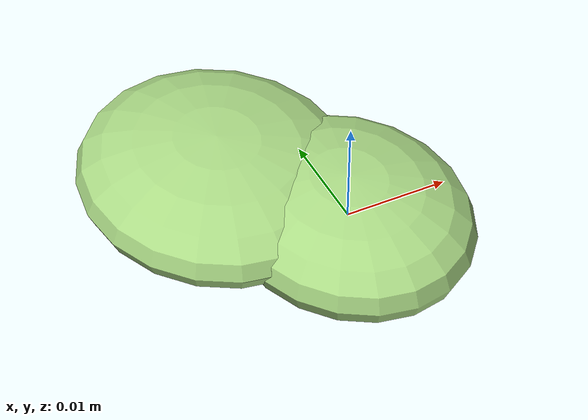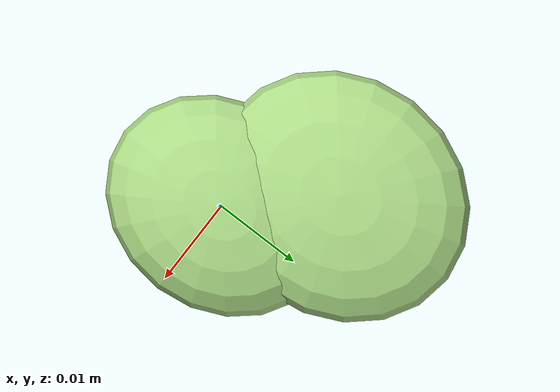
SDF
<?xml version="1.0" ?>
<!-- |    This document was autogenerated by xmacro from data/veggie_template/veggie_base.sdf.xacro  | -->
<!-- |    EDITING THIS FILE BY HAND IS NOT RECOMMENDED                                               | -->
<sdf version="1.8">
	<!-- Parameters -->
	<!-- Base -->
	<!-- Joint 0 -->
	<!-- Link 1 -->
	<!-- Joint 1 -->
	<!-- Link 2 -->
	<!-- Primitives -->
	<!-- All dimensions are half -->
	<!-- Object -->
	<model name="veggie">
		<!-- link0 -->
		<link name="link0">
			<inertial>
				<mass>0.0030442061964451577</mass>
				<inertia>
					<ixx>1.2225141475692126e-07</ixx>
					<ixy>0</ixy>
					<ixz>0</ixz>
					<iyy>9.239602856504485e-08</iyy>
					<iyz>0</iyz>
					<izz>1.865141810789737e-07</izz>
				</inertia>
			</inertial>
			<visual name="link0_visual">
				<pose>0 0 0 0 0 0</pose>
				<geometry>
					<ellipsoid>
						<radii>0.01134254111539413 0.013330027942288054 0.004806655743928107</radii>
					</ellipsoid>
				</geometry>
				<material>
					<ambient>0.659 0.839 0.514 1</ambient>
					<diffuse>0.659 0.839 0.514 1</diffuse>
					<specular>0 0 0 0</specular>
					<emissive>0 0 0 1</emissive>
				</material>
			</visual>
			<collision name="link0_collision">
				<pose>0 0 0 0 0 0 </pose>
				<geometry>
					<ellipsoid>
						<radii>0.01134254111539413 0.013330027942288054 0.004806655743928107</radii>
					</ellipsoid>
				</geometry>
			</collision>
		</link>
		<!-- link1 -->
		<joint name="joint0" type="fixed">
			<pose relative_to="link0">-0.008685763856665024 0.009593941709208909 0.0006922010619349184 0.0 0.0 0.0</pose>
			<parent>link0</parent>
			<child>link1</child>
		</joint>
		<link name="link1">
			<pose relative_to="joint0">0 0 0 0 0 0</pose>
			<inertial>
				<mass>0.0036766014935964097</mass>
				<inertia>
					<ixx>1.7513187132745893e-07</ixx>
					<ixy>0</ixy>
					<ixz>0</ixz>
					<iyy>1.4044534332184135e-07</iyy>
					<iyz>0</iyz>
					<izz>2.8494349099894546e-07</izz>
				</inertia>
			</inertial>
			<visual name="link1_visual">
				<pose>0 0 0 0 0 0</pose>
				<geometry>
					<ellipsoid>
						<radii>0.01304487162702846 0.014742478564845656 0.004564010341476354</radii>
					</ellipsoid>
				</geometry>
				<material>
					<ambient>0.659 0.839 0.514 1</ambient>
					<diffuse>0.659 0.839 0.514 1</diffuse>
					<specular>0 0 0 0</specular>
					<emissive>0 0 0 1</emissive>
				</material>
			</visual>
			<collision name="link1_collision">
				<pose>0 0 0 0 0 0 </pose>
				<geometry>
					<ellipsoid>
						<radii>0.01304487162702846 0.014742478564845656 0.004564010341476354</radii>
					</ellipsoid>
				</geometry>
			</collision>
		</link>
		<!-- link2 -->
	</model>
</sdf>
